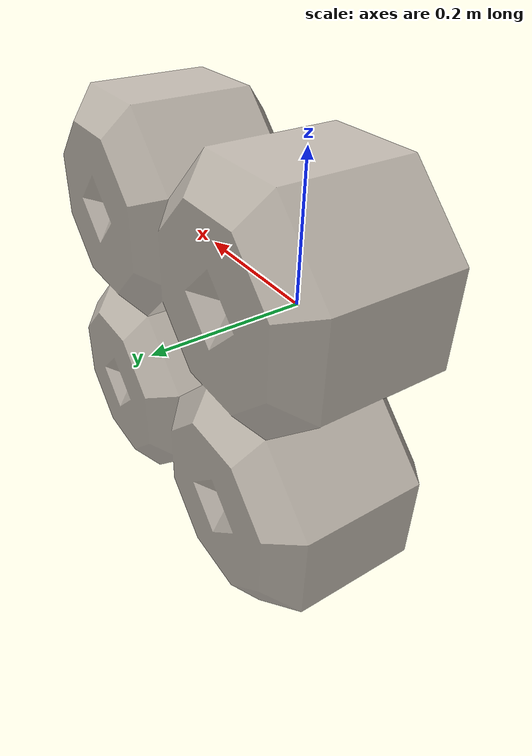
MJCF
<mujoco model="containers_D">
  <default>
    <default class="visual">
      <geom group="2" type="mesh" contype="0" conaffinity="0" />
    </default>
    <default class="collision">
      <geom group="3" type="mesh" />
    </default>
  </default>
  <asset>
    <texture type="2d" name="containers_D_spacebits_texture" file="spacebits_texture.png" />
    <material name="containers_D_spacebits_texture" texture="containers_D_spacebits_texture" specular="0.50196078" shininess="0.15999998099999999" />
    <mesh file="containers_D.obj" name="containers_D_containers_D" />
  </asset>
  <worldbody>
    <body name="containers_D">
      <geom material="containers_D_spacebits_texture" mesh="containers_D_containers_D" class="visual" />
      <geom mesh="containers_D_containers_D" class="collision" />
    </body>
  </worldbody>
</mujoco>
